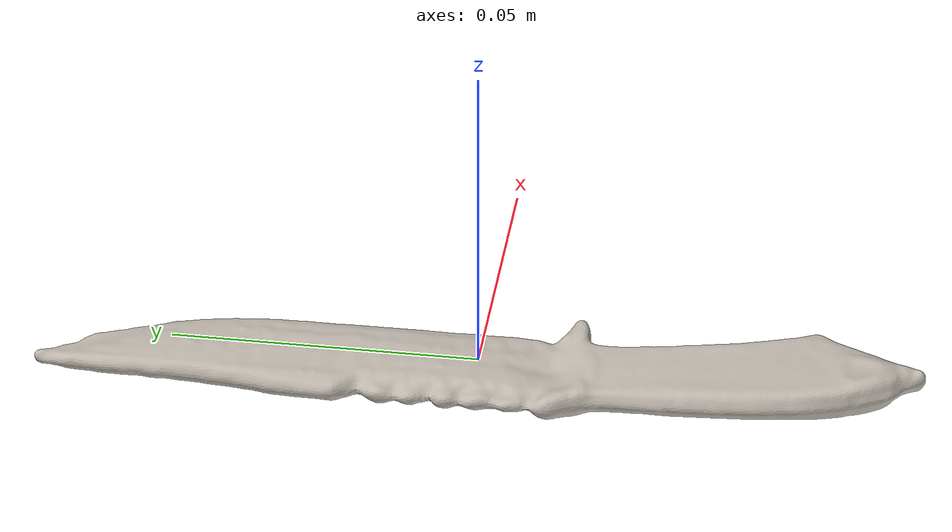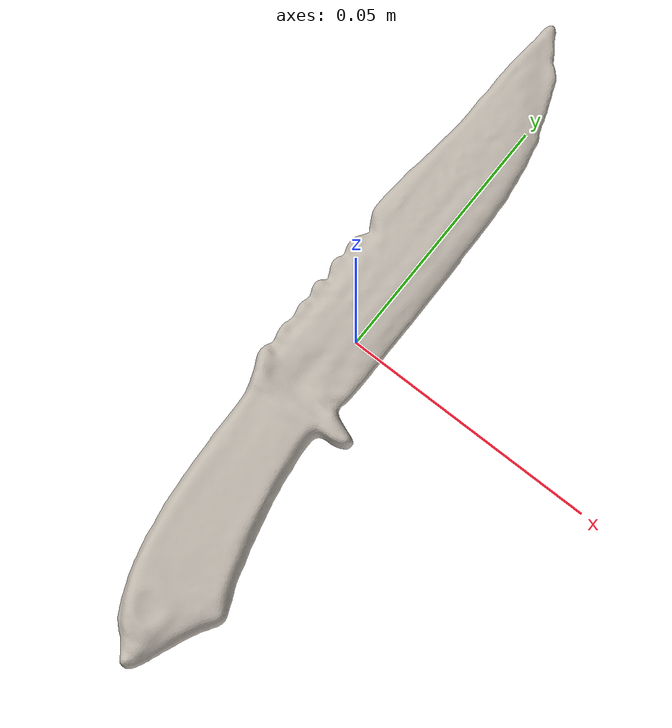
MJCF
<?xml version='1.0' encoding='utf-8'?>
<mujoco model="knife_4">
  <asset>
    <texture file="ceramic.png" name="tex-knife_4" type="2d" />
    <material name="knife_4" reflectance="0.5" texrepeat="1 1" texture="tex-knife_4" texuniform="false" />
    <mesh file="visual/model_normalized_0.obj" name="model_normalized_0_vis" scale="0.14000000000000004 0.14000000000000004 0.14000000000000004" refquat="0.4999999999999999 0.4999999999999999 0.4999999999999999 -0.4999999999999999" />
    <mesh file="collision/model_normalized_collision_13.obj" name="model_normalized_collision_13._coll" scale="0.14000000000000004 0.14000000000000004 0.14000000000000004" refquat="0.4999999999999999 0.4999999999999999 0.4999999999999999 -0.4999999999999999" />
    <mesh file="collision/model_normalized_collision_15.obj" name="model_normalized_collision_15._coll" scale="0.14000000000000004 0.14000000000000004 0.14000000000000004" refquat="0.4999999999999999 0.4999999999999999 0.4999999999999999 -0.4999999999999999" />
    <mesh file="collision/model_normalized_collision_10.obj" name="model_normalized_collision_10._coll" scale="0.14000000000000004 0.14000000000000004 0.14000000000000004" refquat="0.4999999999999999 0.4999999999999999 0.4999999999999999 -0.4999999999999999" />
    <mesh file="collision/model_normalized_collision_26.obj" name="model_normalized_collision_26._coll" scale="0.14000000000000004 0.14000000000000004 0.14000000000000004" refquat="0.4999999999999999 0.4999999999999999 0.4999999999999999 -0.4999999999999999" />
    <mesh file="collision/model_normalized_collision_25.obj" name="model_normalized_collision_25._coll" scale="0.14000000000000004 0.14000000000000004 0.14000000000000004" refquat="0.4999999999999999 0.4999999999999999 0.4999999999999999 -0.4999999999999999" />
    <mesh file="collision/model_normalized_collision_5.obj" name="model_normalized_collision_5._coll" scale="0.14000000000000004 0.14000000000000004 0.14000000000000004" refquat="0.4999999999999999 0.4999999999999999 0.4999999999999999 -0.4999999999999999" />
    <mesh file="collision/model_normalized_collision_31.obj" name="model_normalized_collision_31._coll" scale="0.14000000000000004 0.14000000000000004 0.14000000000000004" refquat="0.4999999999999999 0.4999999999999999 0.4999999999999999 -0.4999999999999999" />
    <mesh file="collision/model_normalized_collision_3.obj" name="model_normalized_collision_3._coll" scale="0.14000000000000004 0.14000000000000004 0.14000000000000004" refquat="0.4999999999999999 0.4999999999999999 0.4999999999999999 -0.4999999999999999" />
    <mesh file="collision/model_normalized_collision_14.obj" name="model_normalized_collision_14._coll" scale="0.14000000000000004 0.14000000000000004 0.14000000000000004" refquat="0.4999999999999999 0.4999999999999999 0.4999999999999999 -0.4999999999999999" />
    <mesh file="collision/model_normalized_collision_28.obj" name="model_normalized_collision_28._coll" scale="0.14000000000000004 0.14000000000000004 0.14000000000000004" refquat="0.4999999999999999 0.4999999999999999 0.4999999999999999 -0.4999999999999999" />
    <mesh file="collision/model_normalized_collision_11.obj" name="model_normalized_collision_11._coll" scale="0.14000000000000004 0.14000000000000004 0.14000000000000004" refquat="0.4999999999999999 0.4999999999999999 0.4999999999999999 -0.4999999999999999" />
    <mesh file="collision/model_normalized_collision_29.obj" name="model_normalized_collision_29._coll" scale="0.14000000000000004 0.14000000000000004 0.14000000000000004" refquat="0.4999999999999999 0.4999999999999999 0.4999999999999999 -0.4999999999999999" />
    <mesh file="collision/model_normalized_collision_24.obj" name="model_normalized_collision_24._coll" scale="0.14000000000000004 0.14000000000000004 0.14000000000000004" refquat="0.4999999999999999 0.4999999999999999 0.4999999999999999 -0.4999999999999999" />
    <mesh file="collision/model_normalized_collision_1.obj" name="model_normalized_collision_1._coll" scale="0.14000000000000004 0.14000000000000004 0.14000000000000004" refquat="0.4999999999999999 0.4999999999999999 0.4999999999999999 -0.4999999999999999" />
    <mesh file="collision/model_normalized_collision_0.obj" name="model_normalized_collision_0._coll" scale="0.14000000000000004 0.14000000000000004 0.14000000000000004" refquat="0.4999999999999999 0.4999999999999999 0.4999999999999999 -0.4999999999999999" />
    <mesh file="collision/model_normalized_collision_27.obj" name="model_normalized_collision_27._coll" scale="0.14000000000000004 0.14000000000000004 0.14000000000000004" refquat="0.4999999999999999 0.4999999999999999 0.4999999999999999 -0.4999999999999999" />
    <mesh file="collision/model_normalized_collision_9.obj" name="model_normalized_collision_9._coll" scale="0.14000000000000004 0.14000000000000004 0.14000000000000004" refquat="0.4999999999999999 0.4999999999999999 0.4999999999999999 -0.4999999999999999" />
    <mesh file="collision/model_normalized_collision_19.obj" name="model_normalized_collision_19._coll" scale="0.14000000000000004 0.14000000000000004 0.14000000000000004" refquat="0.4999999999999999 0.4999999999999999 0.4999999999999999 -0.4999999999999999" />
    <mesh file="collision/model_normalized_collision_21.obj" name="model_normalized_collision_21._coll" scale="0.14000000000000004 0.14000000000000004 0.14000000000000004" refquat="0.4999999999999999 0.4999999999999999 0.4999999999999999 -0.4999999999999999" />
    <mesh file="collision/model_normalized_collision_30.obj" name="model_normalized_collision_30._coll" scale="0.14000000000000004 0.14000000000000004 0.14000000000000004" refquat="0.4999999999999999 0.4999999999999999 0.4999999999999999 -0.4999999999999999" />
    <mesh file="collision/model_normalized_collision_20.obj" name="model_normalized_collision_20._coll" scale="0.14000000000000004 0.14000000000000004 0.14000000000000004" refquat="0.4999999999999999 0.4999999999999999 0.4999999999999999 -0.4999999999999999" />
    <mesh file="collision/model_normalized_collision_2.obj" name="model_normalized_collision_2._coll" scale="0.14000000000000004 0.14000000000000004 0.14000000000000004" refquat="0.4999999999999999 0.4999999999999999 0.4999999999999999 -0.4999999999999999" />
    <mesh file="collision/model_normalized_collision_7.obj" name="model_normalized_collision_7._coll" scale="0.14000000000000004 0.14000000000000004 0.14000000000000004" refquat="0.4999999999999999 0.4999999999999999 0.4999999999999999 -0.4999999999999999" />
    <mesh file="collision/model_normalized_collision_22.obj" name="model_normalized_collision_22._coll" scale="0.14000000000000004 0.14000000000000004 0.14000000000000004" refquat="0.4999999999999999 0.4999999999999999 0.4999999999999999 -0.4999999999999999" />
    <mesh file="collision/model_normalized_collision_16.obj" name="model_normalized_collision_16._coll" scale="0.14000000000000004 0.14000000000000004 0.14000000000000004" refquat="0.4999999999999999 0.4999999999999999 0.4999999999999999 -0.4999999999999999" />
    <mesh file="collision/model_normalized_collision_8.obj" name="model_normalized_collision_8._coll" scale="0.14000000000000004 0.14000000000000004 0.14000000000000004" refquat="0.4999999999999999 0.4999999999999999 0.4999999999999999 -0.4999999999999999" />
    <mesh file="collision/model_normalized_collision_6.obj" name="model_normalized_collision_6._coll" scale="0.14000000000000004 0.14000000000000004 0.14000000000000004" refquat="0.4999999999999999 0.4999999999999999 0.4999999999999999 -0.4999999999999999" />
    <mesh file="collision/model_normalized_collision_18.obj" name="model_normalized_collision_18._coll" scale="0.14000000000000004 0.14000000000000004 0.14000000000000004" refquat="0.4999999999999999 0.4999999999999999 0.4999999999999999 -0.4999999999999999" />
    <mesh file="collision/model_normalized_collision_17.obj" name="model_normalized_collision_17._coll" scale="0.14000000000000004 0.14000000000000004 0.14000000000000004" refquat="0.4999999999999999 0.4999999999999999 0.4999999999999999 -0.4999999999999999" />
    <mesh file="collision/model_normalized_collision_12.obj" name="model_normalized_collision_12._coll" scale="0.14000000000000004 0.14000000000000004 0.14000000000000004" refquat="0.4999999999999999 0.4999999999999999 0.4999999999999999 -0.4999999999999999" />
    <mesh file="collision/model_normalized_collision_4.obj" name="model_normalized_collision_4._coll" scale="0.14000000000000004 0.14000000000000004 0.14000000000000004" refquat="0.4999999999999999 0.4999999999999999 0.4999999999999999 -0.4999999999999999" />
    <mesh file="collision/model_normalized_collision_23.obj" name="model_normalized_collision_23._coll" scale="0.14000000000000004 0.14000000000000004 0.14000000000000004" refquat="0.4999999999999999 0.4999999999999999 0.4999999999999999 -0.4999999999999999" />
    <texture type="2d" name="ddb6e3fe708a_knife__3d_asset_0_g_texture_kd" file="visual/ddb6e3fe708a_knife__3d_asset_0_g_texture_kd.png" />
    <material name="Material_0" texture="ddb6e3fe708a_knife__3d_asset_0_g_texture_kd" specular="0.5" shininess="0.5" />
  </asset>
  <default>
    <default class="region">
      <geom group="1" conaffinity="0" contype="0" rgba="0 1 0 0" />
    </default>
  </default>
  <worldbody>
    <body>
      <body name="object">
        <geom solimp="0.998 0.998 0.001" solref="0.001 1" density="100" friction="0.95 0.3 0.1" type="mesh" mesh="model_normalized_0_vis" conaffinity="0" contype="0" group="1" material="Material_0" />
        <geom solimp="0.998 0.998 0.001" solref="0.001 1" density="100" friction="0.95 0.3 0.1" type="mesh" mesh="model_normalized_collision_13._coll" group="0" rgba="0.8 0.8 0.8 0.0" />
        <geom solimp="0.998 0.998 0.001" solref="0.001 1" density="100" friction="0.95 0.3 0.1" type="mesh" mesh="model_normalized_collision_15._coll" group="0" rgba="0.8 0.8 0.8 0.0" />
        <geom solimp="0.998 0.998 0.001" solref="0.001 1" density="100" friction="0.95 0.3 0.1" type="mesh" mesh="model_normalized_collision_10._coll" group="0" rgba="0.8 0.8 0.8 0.0" />
        <geom solimp="0.998 0.998 0.001" solref="0.001 1" density="100" friction="0.95 0.3 0.1" type="mesh" mesh="model_normalized_collision_26._coll" group="0" rgba="0.8 0.8 0.8 0.0" />
        <geom solimp="0.998 0.998 0.001" solref="0.001 1" density="100" friction="0.95 0.3 0.1" type="mesh" mesh="model_normalized_collision_25._coll" group="0" rgba="0.8 0.8 0.8 0.0" />
        <geom solimp="0.998 0.998 0.001" solref="0.001 1" density="100" friction="0.95 0.3 0.1" type="mesh" mesh="model_normalized_collision_5._coll" group="0" rgba="0.8 0.8 0.8 0.0" />
        <geom solimp="0.998 0.998 0.001" solref="0.001 1" density="100" friction="0.95 0.3 0.1" type="mesh" mesh="model_normalized_collision_31._coll" group="0" rgba="0.8 0.8 0.8 0.0" />
        <geom solimp="0.998 0.998 0.001" solref="0.001 1" density="100" friction="0.95 0.3 0.1" type="mesh" mesh="model_normalized_collision_3._coll" group="0" rgba="0.8 0.8 0.8 0.0" />
        <geom solimp="0.998 0.998 0.001" solref="0.001 1" density="100" friction="0.95 0.3 0.1" type="mesh" mesh="model_normalized_collision_14._coll" group="0" rgba="0.8 0.8 0.8 0.0" />
        <geom solimp="0.998 0.998 0.001" solref="0.001 1" density="100" friction="0.95 0.3 0.1" type="mesh" mesh="model_normalized_collision_28._coll" group="0" rgba="0.8 0.8 0.8 0.0" />
        <geom solimp="0.998 0.998 0.001" solref="0.001 1" density="100" friction="0.95 0.3 0.1" type="mesh" mesh="model_normalized_collision_11._coll" group="0" rgba="0.8 0.8 0.8 0.0" />
        <geom solimp="0.998 0.998 0.001" solref="0.001 1" density="100" friction="0.95 0.3 0.1" type="mesh" mesh="model_normalized_collision_29._coll" group="0" rgba="0.8 0.8 0.8 0.0" />
        <geom solimp="0.998 0.998 0.001" solref="0.001 1" density="100" friction="0.95 0.3 0.1" type="mesh" mesh="model_normalized_collision_24._coll" group="0" rgba="0.8 0.8 0.8 0.0" />
        <geom solimp="0.998 0.998 0.001" solref="0.001 1" density="100" friction="0.95 0.3 0.1" type="mesh" mesh="model_normalized_collision_1._coll" group="0" rgba="0.8 0.8 0.8 0.0" />
        <geom solimp="0.998 0.998 0.001" solref="0.001 1" density="100" friction="0.95 0.3 0.1" type="mesh" mesh="model_normalized_collision_0._coll" group="0" rgba="0.8 0.8 0.8 0.0" />
        <geom solimp="0.998 0.998 0.001" solref="0.001 1" density="100" friction="0.95 0.3 0.1" type="mesh" mesh="model_normalized_collision_27._coll" group="0" rgba="0.8 0.8 0.8 0.0" />
        <geom solimp="0.998 0.998 0.001" solref="0.001 1" density="100" friction="0.95 0.3 0.1" type="mesh" mesh="model_normalized_collision_9._coll" group="0" rgba="0.8 0.8 0.8 0.0" />
        <geom solimp="0.998 0.998 0.001" solref="0.001 1" density="100" friction="0.95 0.3 0.1" type="mesh" mesh="model_normalized_collision_19._coll" group="0" rgba="0.8 0.8 0.8 0.0" />
        <geom solimp="0.998 0.998 0.001" solref="0.001 1" density="100" friction="0.95 0.3 0.1" type="mesh" mesh="model_normalized_collision_21._coll" group="0" rgba="0.8 0.8 0.8 0.0" />
        <geom solimp="0.998 0.998 0.001" solref="0.001 1" density="100" friction="0.95 0.3 0.1" type="mesh" mesh="model_normalized_collision_30._coll" group="0" rgba="0.8 0.8 0.8 0.0" />
        <geom solimp="0.998 0.998 0.001" solref="0.001 1" density="100" friction="0.95 0.3 0.1" type="mesh" mesh="model_normalized_collision_20._coll" group="0" rgba="0.8 0.8 0.8 0.0" />
        <geom solimp="0.998 0.998 0.001" solref="0.001 1" density="100" friction="0.95 0.3 0.1" type="mesh" mesh="model_normalized_collision_2._coll" group="0" rgba="0.8 0.8 0.8 0.0" />
        <geom solimp="0.998 0.998 0.001" solref="0.001 1" density="100" friction="0.95 0.3 0.1" type="mesh" mesh="model_normalized_collision_7._coll" group="0" rgba="0.8 0.8 0.8 0.0" />
        <geom solimp="0.998 0.998 0.001" solref="0.001 1" density="100" friction="0.95 0.3 0.1" type="mesh" mesh="model_normalized_collision_22._coll" group="0" rgba="0.8 0.8 0.8 0.0" />
        <geom solimp="0.998 0.998 0.001" solref="0.001 1" density="100" friction="0.95 0.3 0.1" type="mesh" mesh="model_normalized_collision_16._coll" group="0" rgba="0.8 0.8 0.8 0.0" />
        <geom solimp="0.998 0.998 0.001" solref="0.001 1" density="100" friction="0.95 0.3 0.1" type="mesh" mesh="model_normalized_collision_8._coll" group="0" rgba="0.8 0.8 0.8 0.0" />
        <geom solimp="0.998 0.998 0.001" solref="0.001 1" density="100" friction="0.95 0.3 0.1" type="mesh" mesh="model_normalized_collision_6._coll" group="0" rgba="0.8 0.8 0.8 0.0" />
        <geom solimp="0.998 0.998 0.001" solref="0.001 1" density="100" friction="0.95 0.3 0.1" type="mesh" mesh="model_normalized_collision_18._coll" group="0" rgba="0.8 0.8 0.8 0.0" />
        <geom solimp="0.998 0.998 0.001" solref="0.001 1" density="100" friction="0.95 0.3 0.1" type="mesh" mesh="model_normalized_collision_17._coll" group="0" rgba="0.8 0.8 0.8 0.0" />
        <geom solimp="0.998 0.998 0.001" solref="0.001 1" density="100" friction="0.95 0.3 0.1" type="mesh" mesh="model_normalized_collision_12._coll" group="0" rgba="0.8 0.8 0.8 0.0" />
        <geom solimp="0.998 0.998 0.001" solref="0.001 1" density="100" friction="0.95 0.3 0.1" type="mesh" mesh="model_normalized_collision_4._coll" group="0" rgba="0.8 0.8 0.8 0.0" />
        <geom solimp="0.998 0.998 0.001" solref="0.001 1" density="100" friction="0.95 0.3 0.1" type="mesh" mesh="model_normalized_collision_23._coll" group="0" rgba="0.8 0.8 0.8 0.0" />
        <geom class="region" name="reg_bbox" type="box" pos="0.0003088254218638136 -2.1129071670067397e-09 0.00021654840546813043" size="0.014096702588569394 0.07106060227798462 0.00424242527930224" />
      </body>
    <site rgba="0 0 0 0" size="0.005" pos="0 0 -0.0040258769" name="bottom_site" /><site rgba="0 0 0 0" size="0.005" pos="0 0 0.0044589737" name="top_site" /><site rgba="0 0 0 0" size="0.005" pos="0.071060604 0.071060604 0" name="horizontal_radius_site" /></body>
  </worldbody>
</mujoco>
